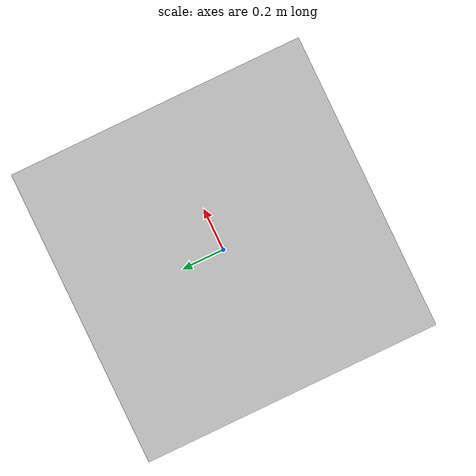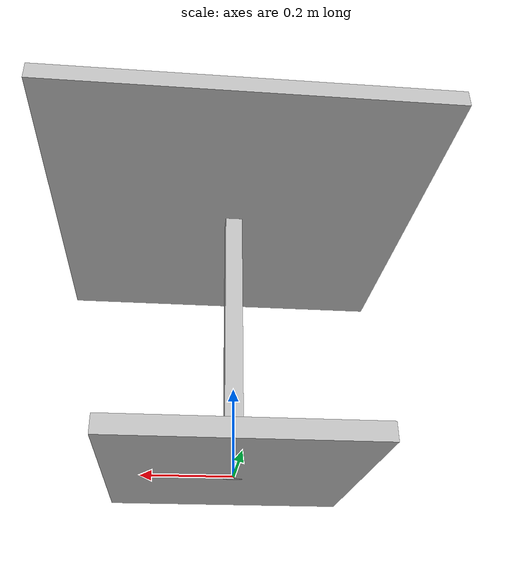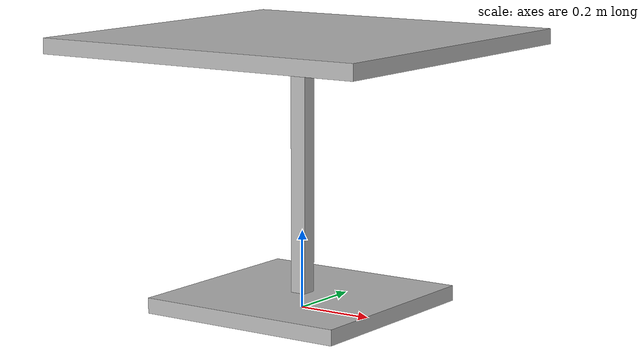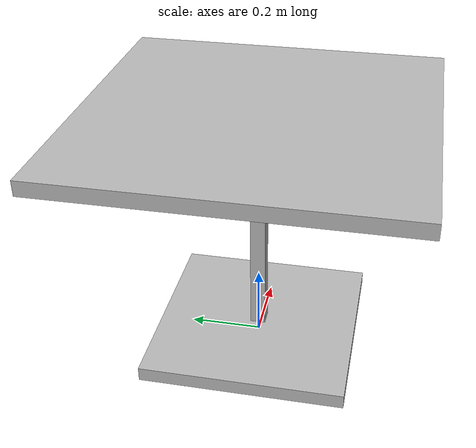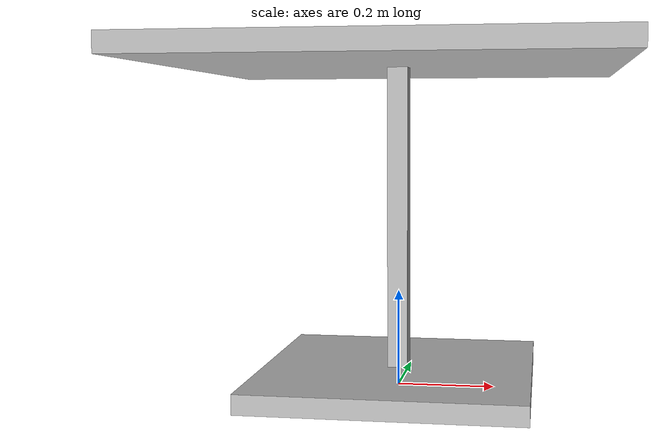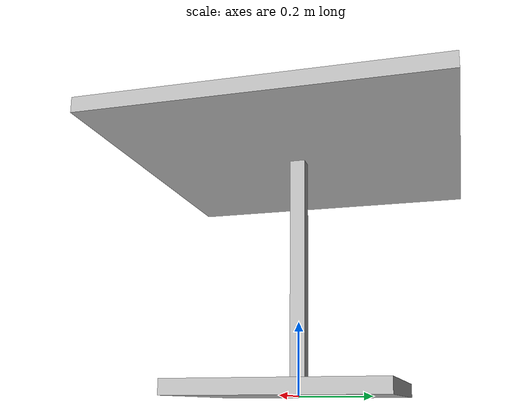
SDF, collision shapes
<?xml version="1.0" ?>
<sdf version="1.5">
  <model name="table">
    <static>true</static>
    <link name="link">
      <collision name="surface">
        <pose>0 0 0.685 0 0 0</pose>
        <geometry>
          <box>
            <size>0.913 0.913 0.04</size>
          </box>
        </geometry>
      </collision>

      <collision name="column">
        <pose>0 0 0.335 0 0 0</pose>
        <geometry>
          <box>
            <size>0.042 0.042 0.67</size>
          </box>
        </geometry>
      </collision>

      <collision name="base">
        <pose>0 0 0.02 0 0 0</pose>
        <geometry>
          <box>
            <size>0.56 0.56 0.04</size>
          </box>
        </geometry>
      </collision>

      <visual name="visual">
        <pose>0 0 -0.07 0 0 0</pose>
        <geometry>
          <mesh>
            <uri>model://table/meshes/cafe_table.dae</uri>
          </mesh>
        </geometry>
      </visual>
    </link>
  </model>
</sdf>
